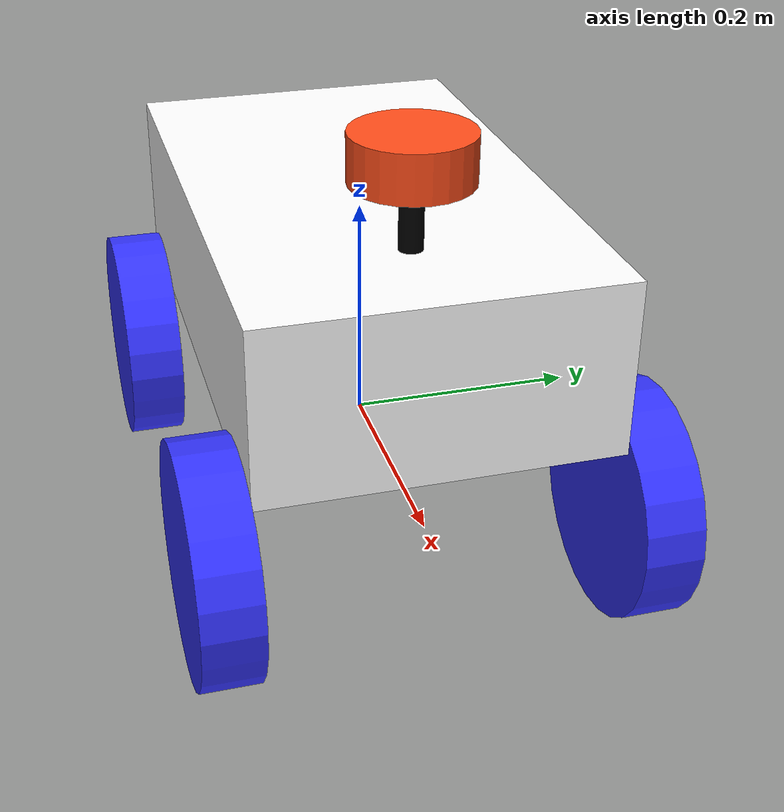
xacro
<?xml version="1.0"?>
<robot xmlns:xacro="http://www.ros.org/wiki/xacro" name="robot">

    <xacro:arg name="use_ros2_control" default="false" />

    <xacro:include filename="robot_core.xacro" />

    <xacro:if value="$(arg use_ros2_control)">
        <xacro:include filename="ros2_control.xacro" />
    </xacro:if>
    <xacro:unless value="$(arg use_ros2_control)">
        <xacro:include filename="gazebo_control.xacro" />
    </xacro:unless>
    <xacro:include filename="lidar.xacro" />

</robot>

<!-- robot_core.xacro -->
<robot xmlns:xacro="http://www.ros.org/wiki/xacro">

    <xacro:include filename="inertial_macros.xacro" />

    <xacro:property name="wheel_radius" value="0.1" />
    <xacro:property name="wheel_offset_center" value="0.2" />

    <material name="white">
        <color rgba="1 1 1 1" />
    </material>

    <material name="orange">
        <color rgba="1 0.3 0.1 1" />
    </material>

    <material name="blue">
        <color rgba="0.2 0.2 1 1" />
    </material>

    <material name="black">
        <color rgba="0 0 0 1" />
    </material>

    <!-- BASE LINK -->

    <link name="base_link">
    </link>

    <joint name="chassis_joint" type="fixed">
        <parent link="base_link" />
        <child link="chassis" />
        <origin xyz="0 0 0.15" />
    </joint>

    <link name="chassis">
        <visual>
            <origin xyz="0 0 0" />
            <geometry>
                <box size="0.5 0.3 0.15" />
            </geometry>
            <material name="white" />
        </visual>
        <collision>
            <origin xyz="0 0 0" />
            <geometry>
                <box size="0.5 0.3 0.15" />
            </geometry>
        </collision>
        <xacro:inertial_box mass="3" x="0.5" y="0.3" z="0.15">
            <origin xyz="0 0 0" rpy="0 0 0" />
        </xacro:inertial_box>
    </link>

    <gazebo
        reference="chassis">
        <material>Gazebo/White</material>
        <mu1>0.001</mu1>
        <mu2>0.001</mu2>
    </gazebo>

    <!-- LEFT WHEEL LINK -->

    <joint name="left_wheel_joint" type="continuous">
        <parent link="base_link" />
        <child link="left_wheel" />
        <origin xyz="-${wheel_offset_center} 0.175 0" rpy="-${pi/2} 0 0" />
        <axis xyz="0 0 1" />
    </joint>

    <link name="left_wheel">
        <visual>
            <geometry>
                <cylinder radius="${wheel_radius}" length="0.05" />
            </geometry>
            <material name="blue" />
        </visual>
        <collision>
            <geometry>
                <cylinder radius="${wheel_radius}" length="0.05" />
            </geometry>
        </collision>
        <xacro:inertial_cylinder mass="0.1" length="0.05" radius="${wheel_radius}">
            <origin xyz="0 0 0" rpy="0 0 0" />
        </xacro:inertial_cylinder>
    </link>

    <gazebo
        reference="left_wheel">
        <material>Gazebo/Blue</material>

    </gazebo>

    <!-- RIGHT WHEEL LINK -->

    <joint name="right_wheel_joint"
        type="continuous">
        <parent link="base_link" />
        <child link="right_wheel" />
        <origin xyz="-${wheel_offset_center} -0.175 0" rpy="${pi/2} 0 0" />
        <axis xyz="0 0 -1" />
    </joint>

    <link name="right_wheel">
        <visual>
            <geometry>
                <cylinder radius="${wheel_radius}" length="0.05" />
            </geometry>
            <material name="blue" />
        </visual>
        <collision>
            <geometry>
                <cylinder radius="${wheel_radius}" length="0.05" />
            </geometry>
        </collision>
        <xacro:inertial_cylinder mass="0.1" length="0.05" radius="${wheel_radius}">
            <origin xyz="0 0 0" rpy="0 0 0" />
        </xacro:inertial_cylinder>
    </link>

    <gazebo
        reference="right_wheel">
        <material>Gazebo/Blue</material>
    </gazebo>

    <!-- FRONT LEFT WHEEL LINK-->
    <joint name="front_left_wheel_joint" type="fixed">
        <parent link="base_link" />
        <child link="front_left_wheel" />
        <origin xyz="${wheel_offset_center} 0.175 0" rpy="-${pi/2} 0 0" />
        <axis xyz="0 0 1" />
    </joint>

    <link name="front_left_wheel">
        <visual>
            <geometry>
                <cylinder radius="${wheel_radius}" length="0.05" />
            </geometry>
            <material name="blue" />
        </visual>
        <collision>
            <geometry>
                <cylinder radius="${wheel_radius}" length="0.05" />
            </geometry>
        </collision>
        <xacro:inertial_cylinder mass="0.1" length="0.05" radius="${wheel_radius}">
            <origin xyz="0 0 0" rpy="0 0 0" />
        </xacro:inertial_cylinder>
    </link>

    <gazebo
        reference="front_left_wheel">
        <material>Gazebo/Blue</material>
        <mu1>0.001</mu1>
        <mu2>0.001</mu2>
    </gazebo>

    <!-- FRONT RIGHT WHEEL LINK-->
    <joint name="front_right_wheel_joint"
        type="fixed">
        <parent link="base_link" />
        <child link="front_right_wheel" />
        <origin xyz="${wheel_offset_center} -0.175 0" rpy="${pi/2} 0 0" />
        <axis xyz="0 0 -1" />
    </joint>

    <link name="front_right_wheel">
        <visual>
            <geometry>
                <cylinder radius="${wheel_radius}" length="0.05" />
            </geometry>
            <material name="blue" />
        </visual>
        <collision>
            <geometry>
                <cylinder radius="${wheel_radius}" length="0.05" />
            </geometry>
        </collision>
        <xacro:inertial_cylinder mass="0.1" length="0.05" radius="${wheel_radius}">
            <origin xyz="0 0 0" rpy="0 0 0" />
        </xacro:inertial_cylinder>
    </link>

    <gazebo
        reference="front_right_wheel">
        <material>Gazebo/Blue</material>
        <mu1>0.001</mu1>
        <mu2>0.001</mu2>
    </gazebo>

</robot>

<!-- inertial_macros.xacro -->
<robot xmlns:xacro="http://www.ros.org/wiki/xacro" >

    <!-- Specify some standard inertial calculations https://en.wikipedia.org/wiki/List_of_moments_of_inertia -->
    <!-- These make use of xacro's mathematical functionality -->

    <xacro:macro name="inertial_box" params="mass x y z *origin">
        <inertial>
            <xacro:insert_block name="origin"/>
            <mass value="${mass}" />
            <inertia ixx="${(1/12) * mass * (y*y+z*z)}" ixy="0.0" ixz="0.0"
                    iyy="${(1/12) * mass * (x*x+z*z)}" iyz="0.0"
                    izz="${(1/12) * mass * (x*x+y*y)}" />
        </inertial>
    </xacro:macro>

    <xacro:macro name="inertial_cylinder" params="mass length radius *origin">
        <inertial>
            <xacro:insert_block name="origin"/>
            <mass value="${mass}" />
            <inertia ixx="${(1/12) * mass * (3*radius*radius + length*length)}" ixy="0.0" ixz="0.0"
                    iyy="${(1/12) * mass * (3*radius*radius + length*length)}" iyz="0.0"
                    izz="${(1/2) * mass * (radius*radius)}" />
        </inertial>
    </xacro:macro>

</robot>

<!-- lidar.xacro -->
<robot xmlns:xacro="http://www.ros.org/wiki/xacro">
    <xacro:property name="box_length" value="0.05" />
    <joint name="laser_joint" type="fixed">
        <parent link="chassis" />
        <child link="laser_frame" />
        <origin xyz="0.15 0 0.15" rpy="0 0 0" />
    </joint>

    <link name="laser_frame">
        <visual>
            <geometry>
                <cylinder radius="0.05" length="0.04" />
            </geometry>
            <material name="orange" />
        </visual>
        <visual>
            <origin xyz="0 0 -0.05" />
            <geometry>
                <cylinder radius="0.01" length="0.1" />
            </geometry>
            <material name="black" />
        </visual>
        <collision>
            <geometry>
                <cylinder radius="0.05" length="0.04" />
            </geometry>
        </collision>
        <xacro:inertial_cylinder mass="0.1" length="0.04" radius="0.05">
            <origin xyz="0 0 0" rpy="0 0 0" />
        </xacro:inertial_cylinder>
    </link>

    <gazebo reference="laser_frame">
        <material>Gazebo/Black</material>

        <sensor name="laser" type="gpu_lidar">
            <pose> 0 0 0 0 0 0 </pose>
            <visualize>true</visualize>
            <update_rate>10</update_rate>
            <lidar>
                <scan>
                    <horizontal>
                        <samples>360</samples>
                        <min_angle>-3.14</min_angle>
                        <max_angle>3.14</max_angle>
                    </horizontal>
                </scan>
                <range>
                    <min>0.3</min>
                    <max>12</max>
                </range>
            </lidar>
            <topic>scan</topic>
            <gz_frame_id>laser_frame</gz_frame_id>
        </sensor>
    </gazebo>

</robot>
